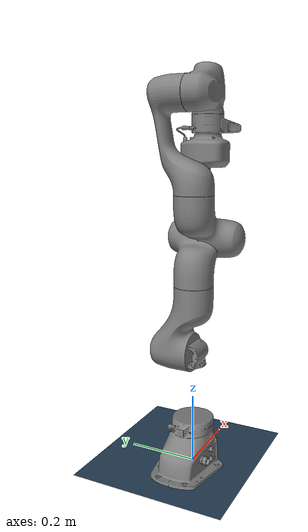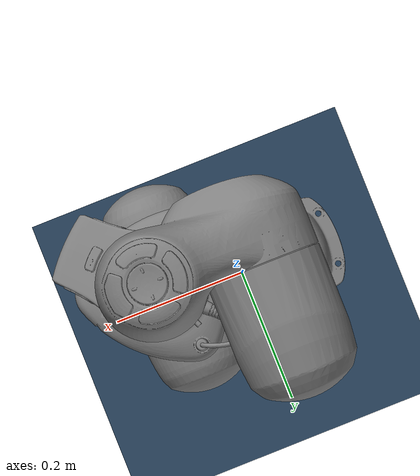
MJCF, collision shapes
<mujoco model="fr3v2 cobot_pump scene">
  <include file="fr3v2_cobot_pump.xml"/>

  <statistic center="0.2 0 0.4" extent=".8"/>

  <visual>
    <headlight diffuse="0.6 0.6 0.6" ambient="0.3 0.3 0.3" specular="0 0 0"/>
    <rgba haze="0.15 0.25 0.35 1"/>
    <global azimuth="120" elevation="-20"/>
  </visual>

  <asset>
    <texture type="skybox" builtin="gradient" rgb1="0.3 0.5 0.7" rgb2="0 0 0" width="512" height="3072"/>
    <texture type="2d" name="groundplane" builtin="checker" mark="edge" rgb1="0.2 0.3 0.4" rgb2="0.1 0.2 0.3"
      markrgb="0.8 0.8 0.8" width="300" height="300"/>
    <material name="groundplane" texture="groundplane" texuniform="true" texrepeat="5 5" reflectance="0.2"/>
  </asset>

  <worldbody>
    <light pos="0 0 1.5" dir="0 0 -1" directional="true"/>
    <geom name="floor" size="0 0 0.05" type="plane" material="groundplane"/>
  </worldbody>
</mujoco>

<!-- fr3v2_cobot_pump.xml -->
<mujoco model="fr3v2 cobot_pump">
  <compiler angle="radian" meshdir="assets"/>

  <default>
    <default class="fr3v2">
      <!-- Overwritten in joints 5, 6, and 7. -->
      <joint damping="0.21" armature="0.195" frictionloss="1.137"/>
      <position inheritrange="1"/>
      <default class="visual">
        <geom type="mesh" group="2" contype="0" conaffinity="0"/>
      </default>
      <default class="collision">
        <geom type="mesh" group="3" mass="0" density="0"/>
      </default>
      <site size="0.001" rgba="0.5 0.5 0.5 0.3" group="4"/>
    </default>
    <default class="cobot_pump">
      <default class="cobot_pump/visual">
        <geom type="mesh" group="2" contype="0" conaffinity="0"/>
      </default>
      <default class="cobot_pump/collision">
        <geom type="mesh" group="3" mass="0" density="0"/>
      </default>
    </default>
  </default>

  <asset>
    <material name="black" rgba=".2 .2 .2 1"/>
    <material name="white" rgba="1 1 1 1"/>
    <material name="red" rgba="1 0.072272 0.039546 1"/>
    <material name="gray" rgba="0.863156 0.863156 0.863157 1"/>
    <material name="button_green" rgba="0.102241 0.571125 0.102242 1"/>
    <material name="button_red" rgba="0.520996 0.008023 0.013702 1"/>
    <material name="button_blue" rgba="0.024157 0.445201 0.737911 1"/>

    <mesh file="link0_0.obj"/>
    <mesh file="link0_1.obj"/>
    <mesh file="link0_2.obj"/>
    <mesh file="link0_3.obj"/>
    <mesh file="link0_4.obj"/>
    <mesh file="link0_5.obj"/>
    <mesh file="link1_3.obj"/>
    <mesh file="link2_3.obj"/>
    <mesh file="link3_3.obj"/>
    <mesh file="link4_3.obj"/>
    <mesh file="link5_3.obj"/>
    <mesh file="link5_4.obj"/>
    <mesh file="link6_0.obj"/>
    <mesh file="link6_1.obj"/>
    <mesh file="link6_2.obj"/>
    <mesh file="link6_3.obj"/>
    <mesh file="link6_4.obj"/>
    <mesh file="link6_5.obj"/>
    <mesh file="link6_6.obj"/>
    <mesh file="link6_7.obj"/>
    <mesh file="link6_8.obj"/>
    <mesh file="link6_9.obj"/>
    <mesh file="link7_0.obj"/>
    <mesh file="link7_1.obj"/>
    <mesh file="link7_2.obj"/>
    <mesh file="link7_3.obj"/>
    <mesh file="link7_4.obj"/>
    <mesh file="link7_5.obj"/>
    <mesh file="link7_6.obj"/>

    <mesh name="link0_coll" file="link0.stl"/>
    <mesh name="link1_coll" file="link1.stl"/>
    <mesh name="link2_coll" file="link2.stl"/>
    <mesh name="link3_coll" file="link3.stl"/>
    <mesh name="link4_coll" file="link4.stl"/>
    <mesh name="link5_coll" file="link5.stl"/>
    <mesh name="link6_coll" file="link6.stl"/>
    <mesh name="link7_coll" file="link7.stl"/>

    <mesh name="cobot_pump" file="cobot_pump.stl"/>
    <mesh name="cobot_pump_simplified" file="cobot_pump.stl"/>
  </asset>

  <worldbody>
    <body name="base" childclass="fr3v2">
      <body name="fr3v2_link0">
        <geom mesh="link0_0" material="black" class="visual"/>
        <geom mesh="link0_1" material="white" class="visual"/>
        <geom mesh="link0_2" material="white" class="visual"/>
        <geom mesh="link0_3" material="white" class="visual"/>
        <geom mesh="link0_4" material="white" class="visual"/>
        <geom mesh="link0_5" material="red" class="visual"/>
        <geom name="fr3v2_link0_collision" mesh="link0_coll" class="collision"/>
        <inertial pos="-0.0172 0.0004 0.0745" quat="0.661377 -0.250161 -0.250161 0.661377" mass="3.85"
          diaginertia="0.0115 0.0107656 0.00673444"/>
        <body name="fr3v2_link1" pos="0 0 0.333">
          <inertial pos="-0.00458 0.027016 -0.0618" quat="0.989811 0.110789 0.00992127 0.0888923" mass="2.4377"
            diaginertia="0.0233003 0.0222611 0.00463865"/>
          <joint name="fr3v2_joint1" pos="0 0 0" axis="0 0 1" range="-2.7437 2.7437" actuatorfrcrange="-87 87"
            damping="0.003" frictionloss="0.2"/>
          <geom name="fr3v2_link1_collision" class="collision" mesh="link1_coll"/>
          <geom mesh="link1_3" material="white" class="visual"/>
          <body name="fr3v2_link2" quat="0.707107 -0.707107 0 0">
            <inertial pos="-0.003473 -0.168509 -0.010479" quat="0.644329 0.758803 -0.0323054 0.0895283" mass="2.2375"
              diaginertia="0.0192001 0.0173406 0.0052593"/>
            <joint name="fr3v2_joint2" pos="0 0 0" axis="0 0 1" range="-1.7837 1.7837" actuatorfrcrange="-87 87"
              damping="0.003" frictionloss="0.2"/>
            <geom name="fr3v2_link2_collision" class="collision" mesh="link2_coll"/>
            <geom mesh="link2_3" material="white" class="visual"/>
            <body name="fr3v2_link3" pos="0 -0.316 0" quat="0.707107 0.707107 0 0">
              <inertial pos="0.092968 0.01801 0.033533" quat="0.877348 -0.0280595 -0.265819 0.398514" mass="2.18579"
                diaginertia="0.0146052 0.0104212 0.00447362"/>
              <joint name="fr3v2_joint3" pos="0 0 0" axis="0 0 1" range="-2.9007 2.9007" actuatorfrcrange="-87 87"
                damping="0.003" frictionloss="0.2"/>
              <geom name="fr3v2_link3_collision" class="collision" mesh="link3_coll"/>
              <geom mesh="link3_3" material="white" class="visual"/>
              <body name="fr3v2_link4" pos="0.0825 0 0" quat="0.707107 0.707107 0 0">
                <inertial pos="-0.068745 0.092947 0.011195" quat="0.725019 0.567552 -0.379628 -0.0900828" mass="2.17587"
                  diaginertia="0.0126388 0.00973606 0.00442618"/>
                <joint name="fr3v2_joint4" pos="0 0 0" axis="0 0 1" range="-3.0421 -0.1518" actuatorfrcrange="-87 87"
                  damping="0.003" frictionloss="0.2"/>
                <geom name="fr3v2_link4_collision" class="collision" mesh="link4_coll"/>
                <geom mesh="link4_3" material="white" class="visual"/>
                <body name="fr3v2_link5" pos="-0.0825 0.384 0" quat="0.707107 -0.707107 0 0">
                  <inertial pos="-0.004197 0.010257 -0.058103" quat="0.993747 -0.0901363 0.0101557 0.0651102"
                    mass="2.17482" diaginertia="0.0318998 0.0305191 0.0038801"/>
                  <joint name="fr3v2_joint5" pos="0 0 0" axis="0 0 1" range="-2.8065 2.8065" actuatorfrcrange="-12 12"
                    damping="0.003" frictionloss="0.2"/>
                  <geom name="fr3v2_link5_collision" class="collision" mesh="link5_coll"/>
                  <geom mesh="link5_3" material="white" class="visual"/>
                  <body name="fr3v2_link6" quat="0.707107 0.707107 0 0">
                    <inertial pos="0.070958 -0.014137 -0.035324" quat="-0.141552 0.574736 0.130817 0.795317"
                      mass="1.56762" diaginertia="0.0047496 0.0041461 0.0024043"/>
                    <joint name="fr3v2_joint6" pos="0 0 0" axis="0 0 1" range="0.5445 4.5169" actuatorfrcrange="-12 12"
                      damping="0.003" frictionloss="0.2"/>
                    <geom name="fr3v2_link6_collision" class="collision" mesh="link6_coll"/>
                    <geom mesh="link6_0" material="gray" class="visual"/>
                    <geom mesh="link6_1" material="white" class="visual"/>
                    <geom mesh="link6_2" material="white" class="visual"/>
                    <geom mesh="link6_3" material="gray" class="visual"/>
                    <geom mesh="link6_4" material="button_red" class="visual"/>
                    <geom mesh="link6_5" material="button_red" class="visual"/>
                    <geom mesh="link6_6" material="black" class="visual"/>
                    <geom mesh="link6_7" material="white" class="visual"/>
                    <geom mesh="link6_8" material="button_red" class="visual"/>
                    <geom mesh="link6_9" material="white" class="visual"/>
                    <body name="fr3v2_link7" pos="0.088 0 0" quat="0.707107 0.707107 0 0">
                      <inertial pos="0.008204 0.001156 0.061016" quat="0.70836 0.00347393 0.0424735 0.704564"
                        mass="0.682876" diaginertia="0.00110022 0.000899844 0.000699938"/>
                      <joint name="fr3v2_joint7" pos="0 0 0" axis="0 0 1" range="-3.0159 3.0159"
                        actuatorfrcrange="-12 12" damping="0.003" frictionloss="0.2"/>
                      <geom name="fr3v2_link7_collision" class="collision" mesh="link7_coll"/>
                      <geom mesh="link7_0" material="white" class="visual"/>
                      <geom mesh="link7_1" material="white" class="visual"/>
                      <geom mesh="link7_2" material="white" class="visual"/>
                      <geom mesh="link7_3" material="white" class="visual"/>
                      <geom mesh="link7_4" material="white" class="visual"/>
                      <geom mesh="link7_5" material="white" class="visual"/>
                      <geom mesh="link7_6" material="white" class="visual"/>
                      <body name="fr3v2_link8" pos="0 0 0.107" quat="1 0 0 0">
                        <body name="cobot_pump" childclass="cobot_pump">
                          <!-- Inertial params from: https://github.com/frankarobotics/franka_description/blob/main/end_effectors/cobot_pump/inertials.yaml -->
                          <inertial pos="0 0 0.063" mass="1.01" diaginertia="0.001 0.001 0.001"/>
                          <geom mesh="cobot_pump" class="cobot_pump/visual"/>
                          <geom mesh="cobot_pump_simplified" class="cobot_pump/collision"/>
                          <site name="cobot_pump/tcp" pos="0 0 0.1"/>
                        </body>
                      </body>
                    </body>
                  </body>
                </body>
              </body>
            </body>
          </body>
        </body>
      </body>
    </body>
  </worldbody>

  <actuator>
    <position class="fr3v2" name="fr3v2_joint1" joint="fr3v2_joint1" kp="4500" kv="450"/>
    <position class="fr3v2" name="fr3v2_joint2" joint="fr3v2_joint2" kp="4500" kv="450"/>
    <position class="fr3v2" name="fr3v2_joint3" joint="fr3v2_joint3" kp="3500" kv="350"/>
    <position class="fr3v2" name="fr3v2_joint4" joint="fr3v2_joint4" kp="3500" kv="350"/>
    <position class="fr3v2" name="fr3v2_joint5" joint="fr3v2_joint5" kp="2000" kv="200"/>
    <position class="fr3v2" name="fr3v2_joint6" joint="fr3v2_joint6" kp="2000" kv="200"/>
    <position class="fr3v2" name="fr3v2_joint7" joint="fr3v2_joint7" kp="2000" kv="200"/>
    <!-- Suction vacuum: ctrl=0 → off, ctrl=1 → full suction (~40 N adhesion force). -->
    <adhesion name="suction" body="cobot_pump" gain="40" ctrlrange="0 1"/>
  </actuator>

  <keyframe>
    <key name="home" qpos="0 0 0 -1.57079 0 1.57079 -0.7853" ctrl="0 0 0 -1.57079 0 1.57079 -0.7853 0"/>
  </keyframe>

</mujoco>
